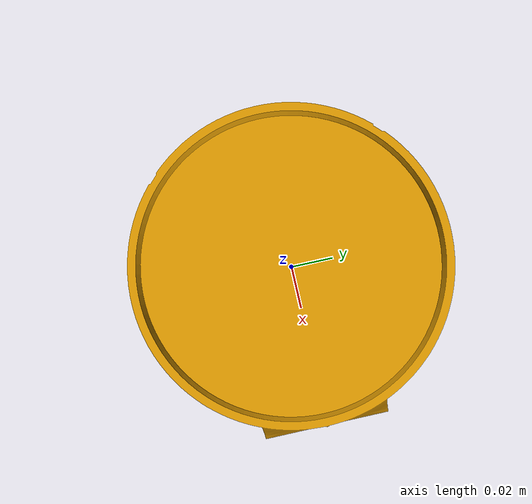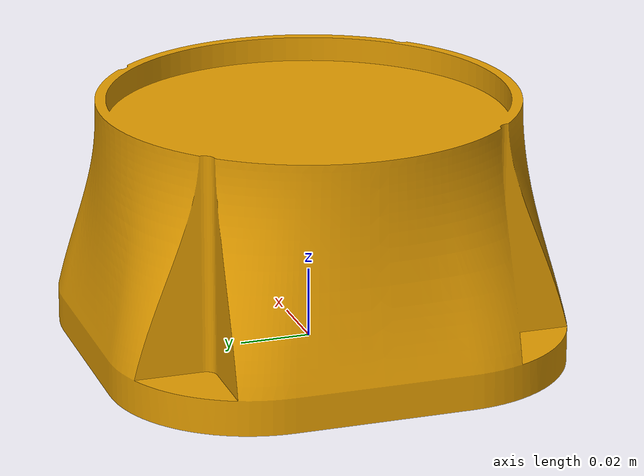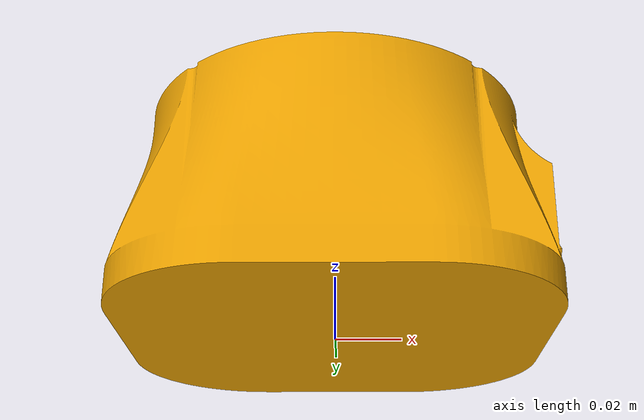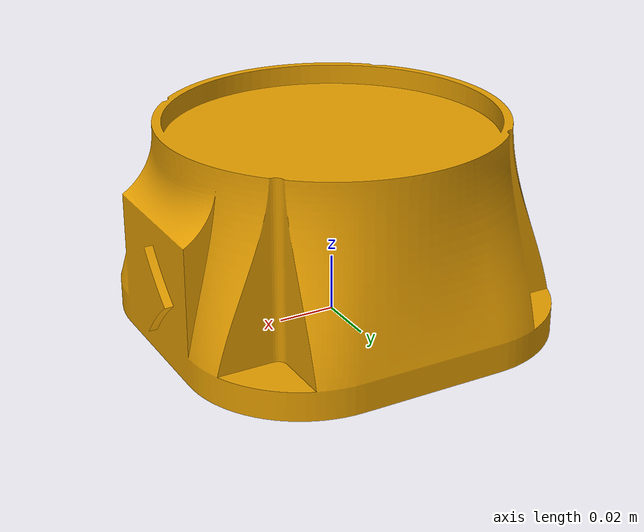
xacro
<?xml version="1.0"?>

<robot xmlns:xacro="http://www.ros.org/wiki/xacro" name="main">
    <link name="base_link">
        <inertial>
            <origin xyz="0.000696452473990524 -1.170323750862548e-10 0.030371653659111337"
                rpy="0.0 0.0 0.0" />
            <mass value="6.621911264861204" />
            <inertia ixx="0.00923937323696488" iyy="0.009511010438696694" izz="0.014108201739142418"
                ixy="4.5979814145310376e-12" iyz="5.7989392972185086e-12"
                ixz="-2.1996132580219004e-05" />
        </inertial>
        <visual>
            <origin xyz="0.0 0.0 0.0" rpy="0.0 0.0 0.0" />
            <geometry>
                <mesh filename="package://cobot_description/meshes/base-v1.stl"
                    scale="0.001 0.001 0.001" />
            </geometry>
        </visual>
        <collision>
            <origin xyz="0.0 0.0 0.0" rpy="0.0 0.0 0.0" />
            <geometry>
                <mesh filename="package://cobot_description/meshes/base-v1.stl"
                    scale="0.001 0.001 0.001" />
            </geometry>
        </collision>
    </link>

    <link name="world" />

    <joint name="base_joint" type="fixed">
        <origin xyz="0 0 0" rpy="0 0 0" />
        <parent link="world" />
        <child link="base_link" />
    </joint>

</robot>
